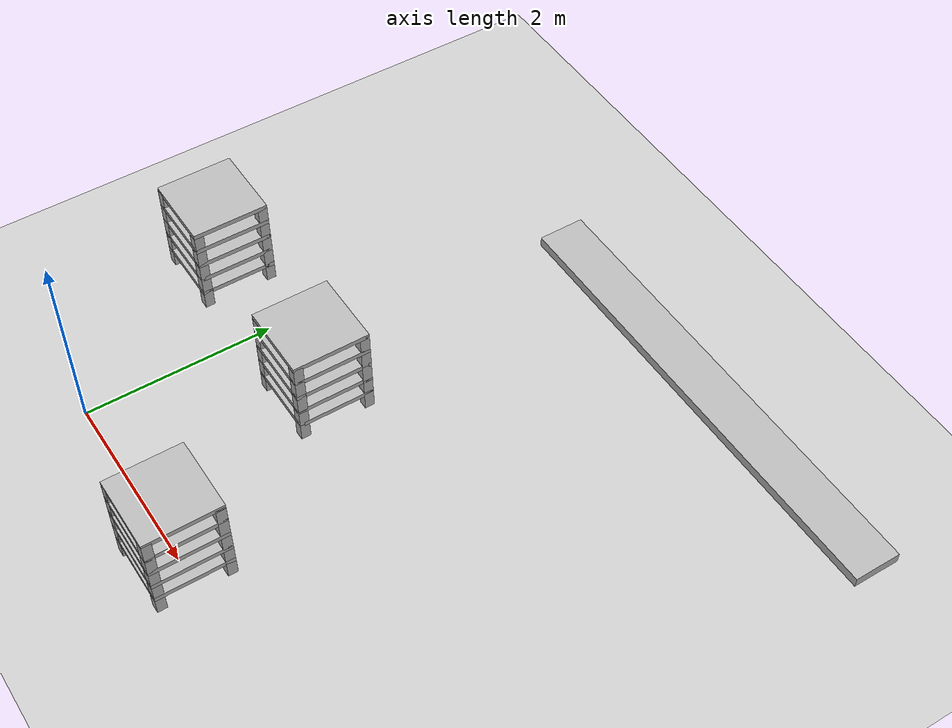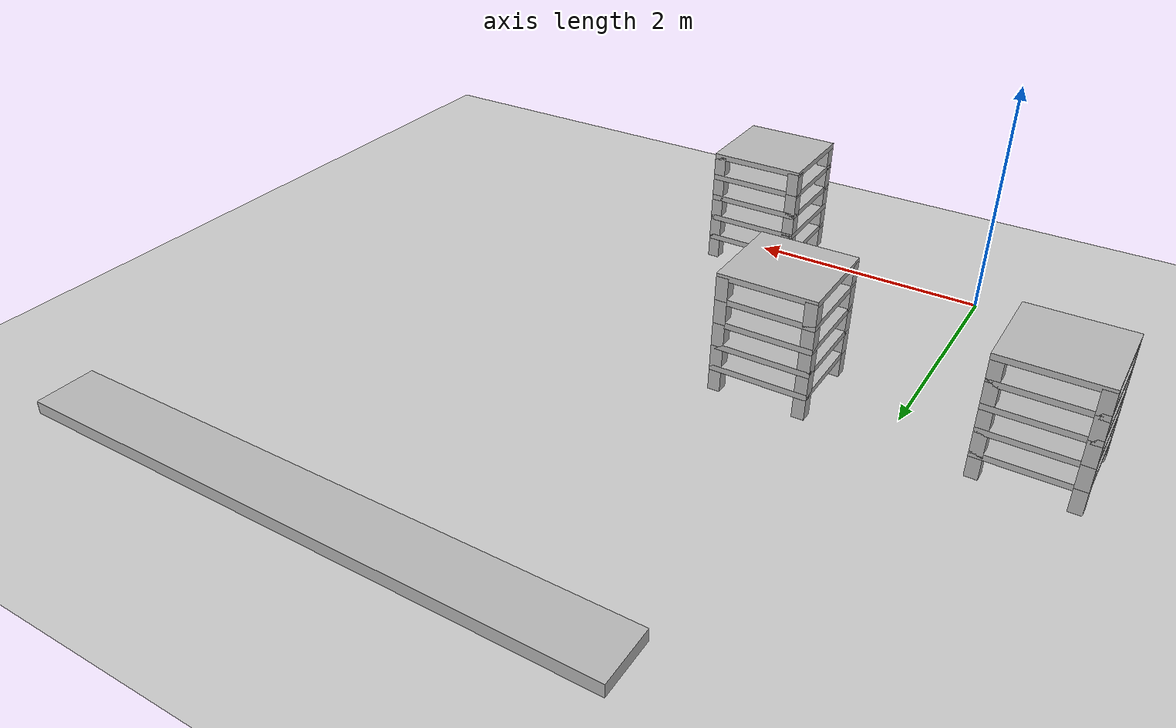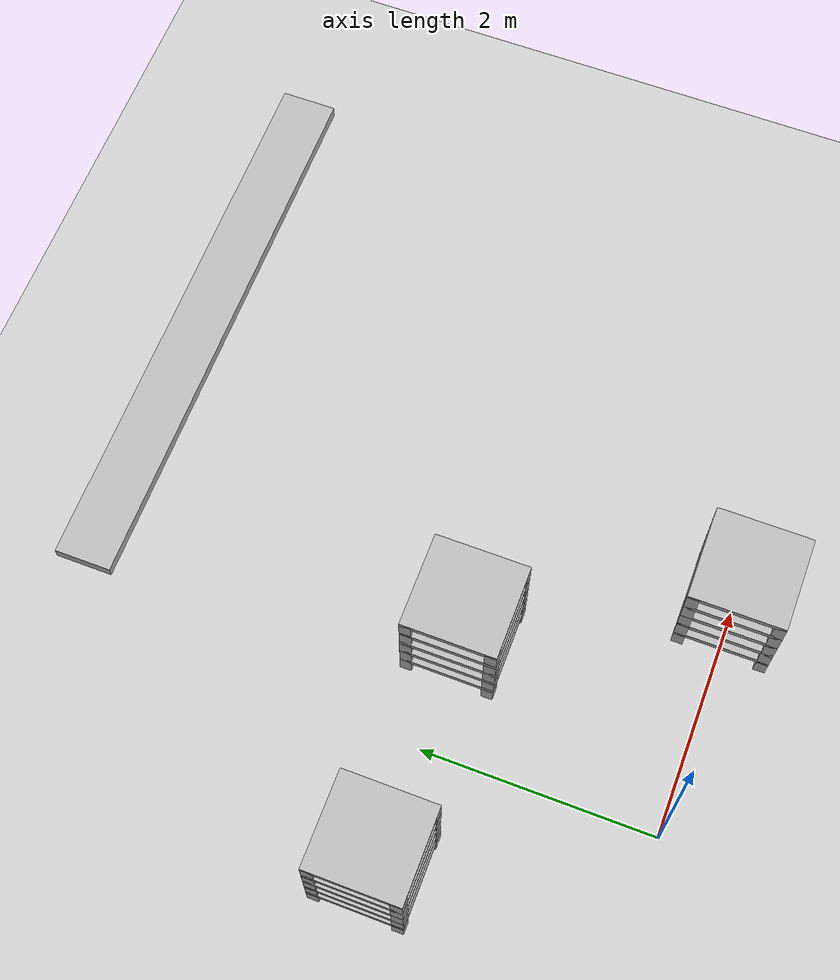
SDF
<sdf version="1.5">
 <world name="warehouse">
  <include><uri>model://sun</uri></include>
  <include><uri>model://ground_plane</uri></include>
  <include><uri>model://storage_unit</uri><pose>2 0 0 0 0 0</pose><name>storage_unit_1</name></include>
  <include><uri>model://storage_unit</uri><pose>1 2 0 0 0 0</pose><name>storage_unit_2</name></include>
  <include><uri>model://storage_unit</uri><pose>-1 2 0 0 0 0</pose><name>storage_unit_3</name></include>
  <model name="my_model">
   <pose>3 5.2 0 0 0 0</pose>
   <static>true</static>
   <link name="link">
    <collision name="collision"><geometry><box><size>5 0.5 0.2</size></box></geometry></collision>
    <visual name="visual"><geometry><box><size>5 0.5 0.2</size></box></geometry></visual>
   </link>
  </model>
 </world>
</sdf>

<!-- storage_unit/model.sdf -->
<sdf version="1.6">
<!-- storage unit model -->
		<model name="storage_unit">
			<include>
				<uri>model://shelf</uri>
				<pose>0 0 0 0 0 0</pose>
				<name>shelf_1</name>
			</include>
			<include>
				<uri>model://shelf</uri>
				<pose>0 0 0.2 0 0 0</pose>
				<name>shelf_2</name>
			</include>
			<include>
				<uri>model://shelf</uri>
				<pose>0 0 0.4 0 0 0</pose>
				<name>shelf_3</name>
			</include>
			<include>
				<uri>model://shelf</uri>
				<pose>0 0 0.6 0 0 0</pose>
				<name>shelf_4</name>
			</include>
			<include>
				<uri>model://shelf</uri>
				<pose>0 0 0.8 0 0 0</pose>
				<name>shelf_5</name>
			</include>
			<joint type="fixed" name="shelf_1_joint">
        			<pose>0 0 0.2 0 0 0</pose>
        			<child>shelf_2::body</child>
        			<parent>shelf_1::body</parent>
                	</joint>
			<joint type="fixed" name="shelf_2_joint">
        			<pose>0 0 0.4 0 0 0</pose>
        			<child>shelf_3::body</child>
        			<parent>shelf_2::body</parent>
                	</joint>
			<joint type="fixed" name="shelf_3_joint">
        			<pose>0 0 0.6 0 0 0</pose>
        			<child>shelf_4::body</child>
        			<parent>shelf_3::body</parent>
                	</joint>
			<joint type="fixed" name="shelf_4_joint">
        			<pose>0 0 0.8 0 0 0</pose>
        			<child>shelf_5::body</child>
        			<parent>shelf_4::body</parent>
                	</joint>
		</model>
</sdf>

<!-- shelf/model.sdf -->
<sdf version="1.6">
<!-- shelf model -->
		<model name="shelf">
			<link name='body'>
           		<pose>0 0 0.2 0 0 0</pose>
		        <collision name='collision'>
		         	<geometry>
		           		<box>
		              		<size>.8 .8 .05</size>
		            		</box>
		          	</geometry>
		        	</collision>

		        <visual name='visual'>
		        		<geometry>
		            		<box>
		              		<size>.8 .8 .05</size>
		            		</box>
		          	</geometry>
		        </visual>
			</link>
			<link name="leg_1">
            <pose>0.35 0.35 0.1 0 0 0</pose>
		        <collision name='collision'>
		         	<geometry>
		           		<box>
		              		<size>.1 .1 0.20</size>
		            		</box>
		          	</geometry>
		        	</collision>
		        <visual name='visual'>
		        		<geometry>
		            		<box>
		              		<size>.1 .1 0.20</size>
		            		</box>
		          	</geometry>
		        </visual>
			</link>
            <link name="leg_2">
            <pose>-0.35 0.35 0.1 0 0 0</pose>
		        <collision name='collision'>
		         	<geometry>
		           		<box>
		              		<size>.1 .1 0.20</size>
		            		</box>
		          	</geometry>
		        	</collision>

		        <visual name='visual'>
		        		<geometry>
		            		<box>
		              		<size>.1 .1 0.20</size>
		            		</box>
		          	</geometry>
		        </visual>
			</link>
            <link name="leg_3">
            <pose>0.35 -0.35 0.1 0 0 0</pose>
		        <collision name='collision'>
		         	<geometry>
		           		<box>
		              		<size>.1 .1 0.20</size>
		            		</box>
		          	</geometry>
		        	</collision>
		        <visual name='visual'>
		        		<geometry>
		            		<box>
		              		<size>.1 .1 0.20</size>
		            		</box>
		          	</geometry>
		        </visual>
			</link>
            <link name="leg_4">
            <pose>-0.35 -0.35 0.1 0 0 0</pose>
		        <collision name='collision'>
		         	<geometry>
		           		<box>
		              		<size>.1 .1 0.20</size>
		            		</box>
		          	</geometry>
		        	</collision>
		        <visual name='visual'>
		        		<geometry>
		            		<box>
		              		<size>.1 .1 0.20</size>
		            		</box>
		          	</geometry>
		        </visual>
			</link>
            <joint type="fixed" name="leg_1_joint">
        			<pose>0 0 0 0 0 0</pose>
        			<child>leg_1</child>
        			<parent>body</parent>
                </joint>
                <joint type="fixed" name="leg_2_joint">
        			<pose>0 0 0 0 0 0</pose>
        			<child>leg_2</child>
        			<parent>body</parent>
                </joint>
                <joint type="fixed" name="leg_3_joint">
        			<pose>0 0 0 0 0 0</pose>
        			<child>leg_3</child>
        			<parent>body</parent>
                </joint>
                <joint type="fixed" name="leg_4_joint">
        			<pose>0 0 0 0 0 0</pose>
        			<child>leg_4</child>
        			<parent>body</parent>
                </joint>
</model>

</sdf>
